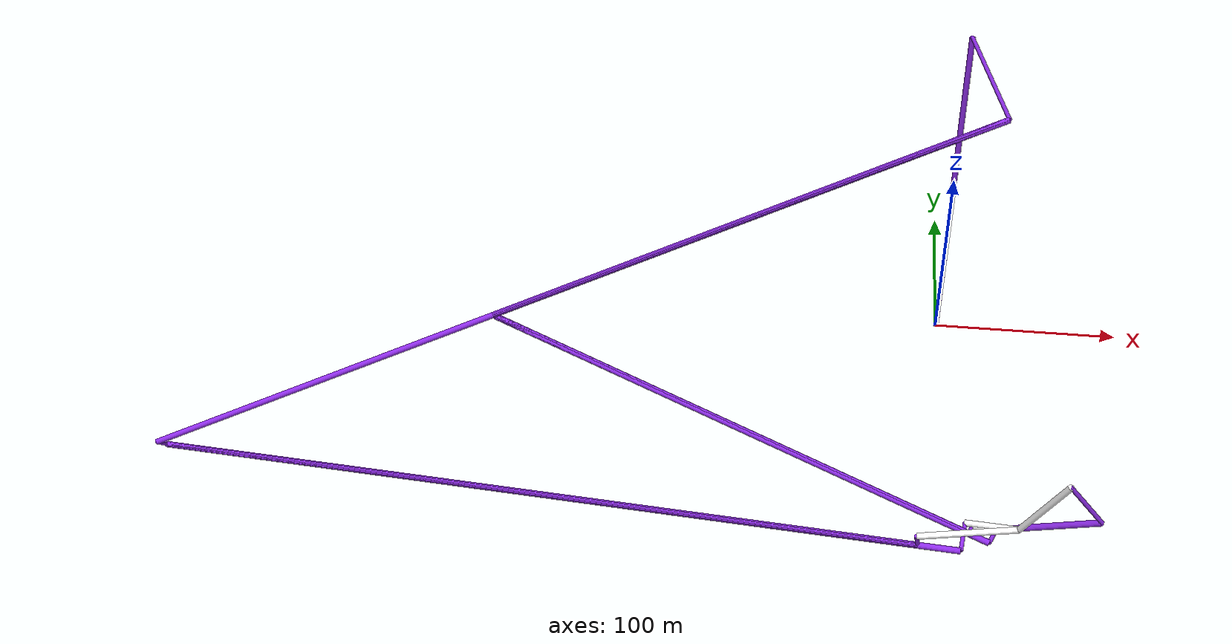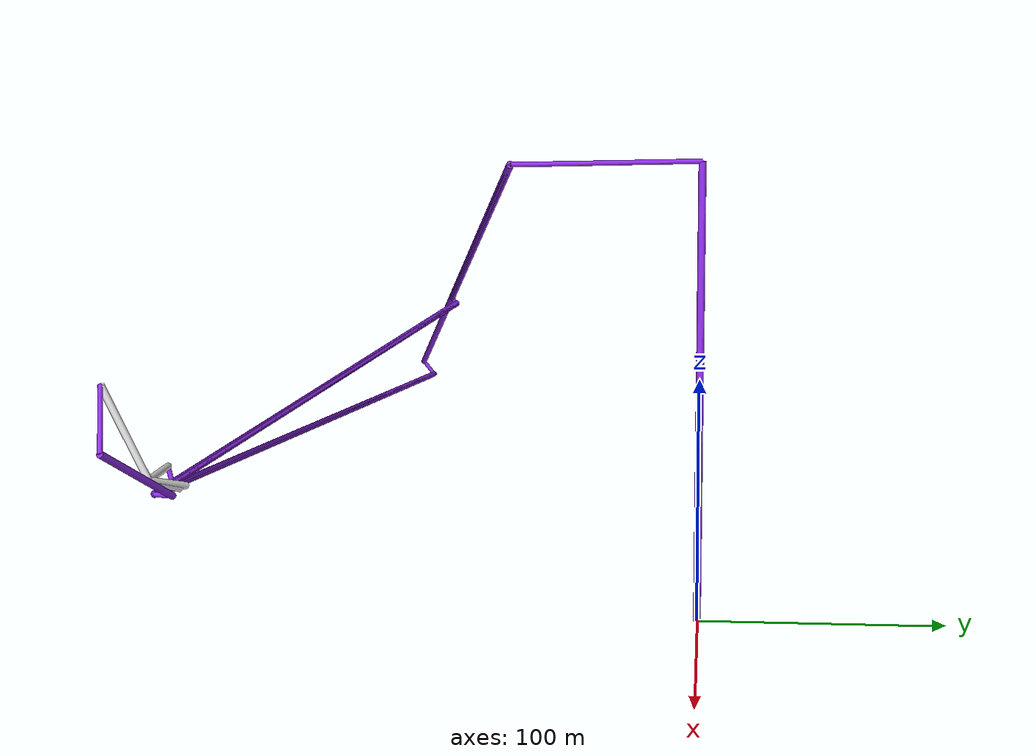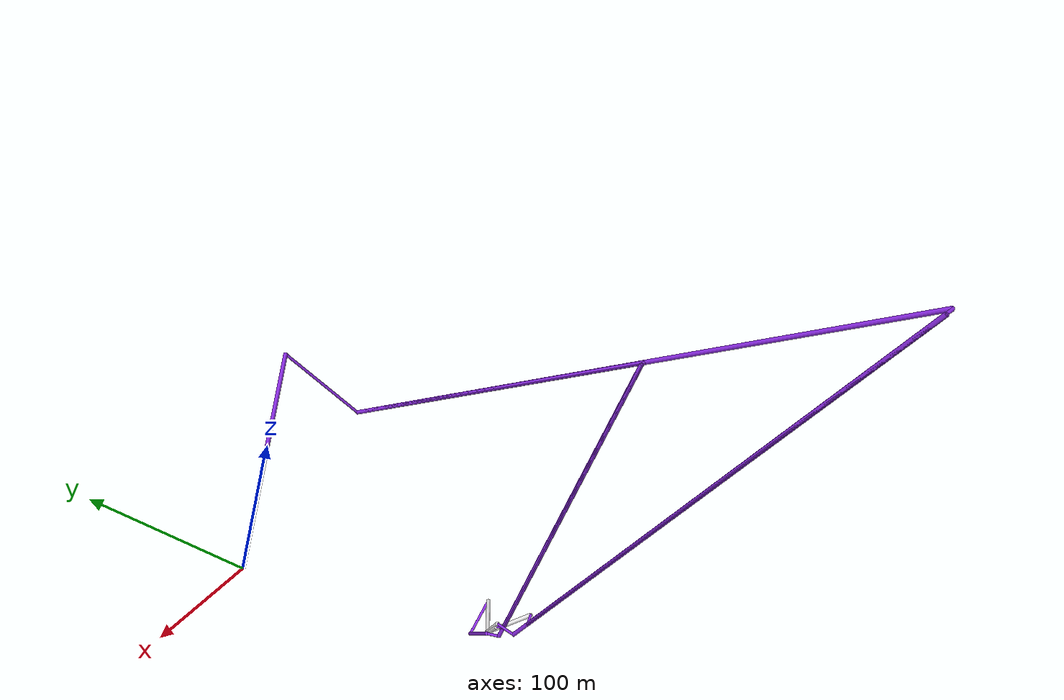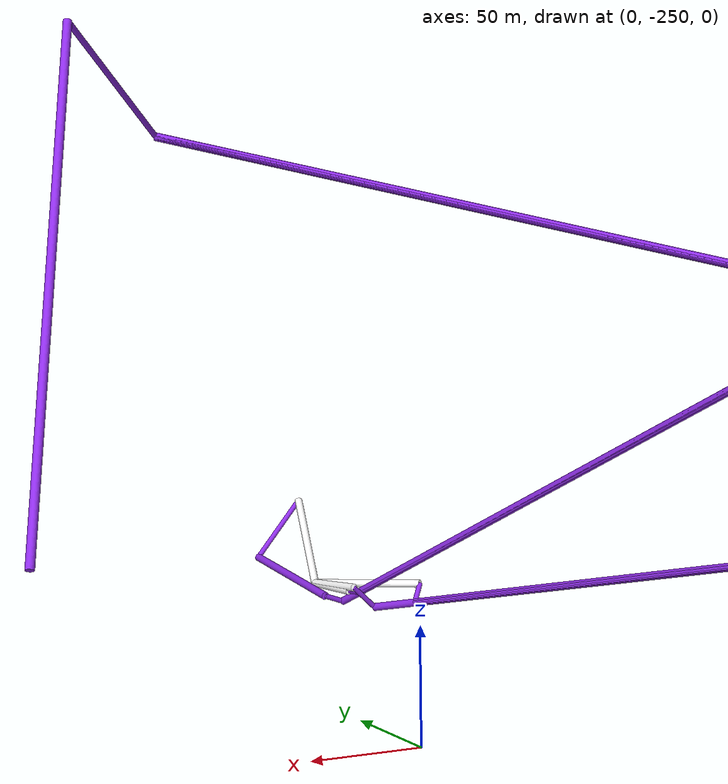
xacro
<?xml version="1.0" ?>
<robot name="atks" xmlns:xacro="http://ros.org/wiki/xacro">
 <link name="base"/>
  <joint name="base_edge0_linkP" type="fixed">
    <parent link="base"/>
    <child link="edge0_linkP"/>
    <origin xyz="0.000000 0.000000 0.000000" rpy="0.000000 0.000000 0.000000"/>
  </joint>
  <link name="edge0_linkP">
      <visual>
       <geometry>
         <cylinder length="0.000000" radius="0.000000"/>
       </geometry>
        <origin xyz="0.000000 0.000000 0.000000" rpy="0.000000 0.000000 0.000000"/>
       <material name="Material_1">
         <color rgba="0.000000 0.000000 0.000000 1.000000"/>
       </material>
     </visual>
   </link>
  <joint name="edge0_linkP_edge0_link0Z_1" type="fixed">
    <parent link="edge0_linkP"/>
    <child link="edge0_link0Z_1"/>
    <origin xyz="0.000000 0.000000 0.000000" rpy="0.000000 0.000000 0.000000"/>
  </joint>
  <link name="edge0_link0Z_1">
      <visual>
       <geometry>
         <cylinder length="187.382458" radius="1.500000"/>
       </geometry>
        <origin xyz="0.000000 0.000000 93.691229" rpy="0.000000 0.000000 0.000000"/>
       <material name="Material_2">
         <color rgba="0.541176 0.168627 0.886275 1.000000"/>
       </material>
     </visual>
   </link>
  <joint name="edge0_link0Z_1_edge0_link0X_1" type="fixed">
    <parent link="edge0_link0Z_1"/>
    <child link="edge0_link0X_1"/>
    <origin xyz="0.000000 0.000000 187.382458" rpy="0.000000 0.000000 -1.363798"/>
  </joint>
  <link name="edge0_link0X_1">
      <visual>
       <geometry>
         <cylinder length="75.413387" radius="1.000000"/>
       </geometry>
        <origin xyz="37.706693 0.000000 0.000000" rpy="0.000000 1.570796 0.000000"/>
       <material name="Material_3">
         <color rgba="0.541176 0.168627 0.886275 1.000000"/>
       </material>
     </visual>
   </link>
  <joint name="edge0_link0X_1_edge1_linkP" type="revolute">
   <parent link="edge0_link0X_1"/>
    <child link="edge1_linkP"/>
    <origin xyz="75.413387 0.000000 0.000000" rpy="-1.190504 0.000000 0.000000"/>
   <limit effort="1000.0" lower="-3.14" upper="3.14" velocity="0.5"/>
  <axis xyz="0.000000 0.000000 1.000000"/>
   </joint>
  <link name="edge1_linkP">
      <visual>
       <geometry>
         <cylinder length="0.000000" radius="0.000000"/>
       </geometry>
        <origin xyz="0.000000 0.000000 0.000000" rpy="0.000000 0.000000 0.000000"/>
       <material name="Material_4">
         <color rgba="0.541176 0.168627 0.886275 1.000000"/>
       </material>
     </visual>
   </link>
  <joint name="edge1_linkP_edge1_link0Z_2" type="fixed">
    <parent link="edge1_linkP"/>
    <child link="edge1_link0Z_2"/>
    <origin xyz="0.000000 0.000000 0.000000" rpy="0.000000 0.000000 0.000000"/>
  </joint>
  <joint name="edge1_linkP_edge1_link0Z_3" type="fixed">
    <parent link="edge1_linkP"/>
    <child link="edge1_link0Z_3"/>
    <origin xyz="0.000000 0.000000 0.000000" rpy="0.000000 0.000000 0.000000"/>
  </joint>
  <link name="edge1_link0Z_2">
      <visual>
       <geometry>
         <cylinder length="455.135432" radius="1.500000"/>
       </geometry>
        <origin xyz="0.000000 0.000000 -227.567716" rpy="0.000000 0.000000 0.000000"/>
       <material name="Material_5">
         <color rgba="0.541176 0.168627 0.886275 1.000000"/>
       </material>
     </visual>
   </link>
  <joint name="edge1_link0Z_2_edge1_link0X_2" type="fixed">
    <parent link="edge1_link0Z_2"/>
    <child link="edge1_link0X_2"/>
    <origin xyz="0.000000 0.000000 -455.135432" rpy="0.000000 0.000000 2.191051"/>
  </joint>
  <link name="edge1_link0X_2">
      <visual>
       <geometry>
         <cylinder length="9.465470" radius="1.000000"/>
       </geometry>
        <origin xyz="4.732735 0.000000 0.000000" rpy="0.000000 1.570796 0.000000"/>
       <material name="Material_6">
         <color rgba="0.541176 0.168627 0.886275 1.000000"/>
       </material>
     </visual>
   </link>
  <joint name="edge1_link0X_2_edge2_linkP" type="revolute">
   <parent link="edge1_link0X_2"/>
    <child link="edge2_linkP"/>
    <origin xyz="9.465470 0.000000 0.000000" rpy="-2.685371 0.000000 0.000000"/>
   <limit effort="1000.0" lower="-3.14" upper="3.14" velocity="0.5"/>
  <axis xyz="0.000000 0.000000 1.000000"/>
   </joint>
  <link name="edge2_linkP">
      <visual>
       <geometry>
         <cylinder length="0.000000" radius="0.000000"/>
       </geometry>
        <origin xyz="0.000000 0.000000 0.000000" rpy="0.000000 0.000000 0.000000"/>
       <material name="Material_7">
         <color rgba="0.541176 0.168627 0.886275 1.000000"/>
       </material>
     </visual>
   </link>
  <joint name="edge2_linkP_edge2_link0Z_4" type="fixed">
    <parent link="edge2_linkP"/>
    <child link="edge2_link0Z_4"/>
    <origin xyz="0.000000 0.000000 0.000000" rpy="0.000000 0.000000 0.000000"/>
  </joint>
  <joint name="edge2_linkP_edge2_link0Z_5" type="fixed">
    <parent link="edge2_linkP"/>
    <child link="edge2_link0Z_5"/>
    <origin xyz="0.000000 0.000000 0.000000" rpy="0.000000 0.000000 0.000000"/>
  </joint>
  <link name="edge2_link0Z_4">
      <visual>
       <geometry>
         <cylinder length="388.862768" radius="1.500000"/>
       </geometry>
        <origin xyz="0.000000 0.000000 -194.431384" rpy="0.000000 0.000000 0.000000"/>
       <material name="Material_8">
         <color rgba="0.541176 0.168627 0.886275 1.000000"/>
       </material>
     </visual>
   </link>
  <joint name="edge2_link0Z_4_edge2_link0X_4" type="fixed">
    <parent link="edge2_link0Z_4"/>
    <child link="edge2_link0X_4"/>
    <origin xyz="0.000000 0.000000 -388.862768" rpy="0.000000 0.000000 -2.704720"/>
  </joint>
  <link name="edge2_link0X_4">
      <visual>
       <geometry>
         <cylinder length="8.418095" radius="1.000000"/>
       </geometry>
        <origin xyz="4.209048 0.000000 0.000000" rpy="0.000000 1.570796 0.000000"/>
       <material name="Material_9">
         <color rgba="0.541176 0.168627 0.886275 1.000000"/>
       </material>
     </visual>
   </link>
  <joint name="edge2_link0X_4_edge4_link0Z" type="revolute">
   <parent link="edge2_link0X_4"/>
    <child link="edge4_link0Z"/>
    <origin xyz="8.418095 0.000000 0.000000" rpy="-2.917646 0.000000 0.000000"/>
   <limit effort="1000.0" lower="-3.14" upper="3.14" velocity="0.5"/>
  <axis xyz="0.000000 0.000000 1.000000"/>
   </joint>
  <link name="edge4_link0Z">
      <visual>
       <geometry>
         <cylinder length="45.558799" radius="1.500000"/>
       </geometry>
        <origin xyz="-0.357320 -0.144080 22.776141" rpy="-0.016914 -0.000000 1.954079"/>
       <material name="Material_10">
         <color rgba="1.000000 1.000000 1.000000 1.000000"/>
       </material>
     </visual>
   </link>
  <link name="edge2_link0Z_5">
      <visual>
       <geometry>
         <cylinder length="408.452413" radius="1.500000"/>
       </geometry>
        <origin xyz="0.000000 0.000000 -204.226207" rpy="0.000000 0.000000 0.000000"/>
       <material name="Material_11">
         <color rgba="0.541176 0.168627 0.886275 1.000000"/>
       </material>
     </visual>
   </link>
  <joint name="edge2_link0Z_5_edge2_link0X_5" type="fixed">
    <parent link="edge2_link0Z_5"/>
    <child link="edge2_link0X_5"/>
    <origin xyz="0.000000 0.000000 -408.452413" rpy="0.000000 0.000000 -1.171920"/>
  </joint>
  <link name="edge2_link0X_5">
      <visual>
       <geometry>
         <cylinder length="14.319392" radius="1.000000"/>
       </geometry>
        <origin xyz="7.159696 0.000000 0.000000" rpy="0.000000 1.570796 0.000000"/>
       <material name="Material_12">
         <color rgba="0.541176 0.168627 0.886275 1.000000"/>
       </material>
     </visual>
   </link>
  <joint name="edge2_link0X_5_edge5_link0Z" type="revolute">
   <parent link="edge2_link0X_5"/>
    <child link="edge5_link0Z"/>
    <origin xyz="14.319392 0.000000 0.000000" rpy="-0.525040 0.000000 0.000000"/>
   <limit effort="1000.0" lower="-3.14" upper="3.14" velocity="0.5"/>
  <axis xyz="0.000000 0.000000 1.000000"/>
   </joint>
  <link name="edge5_link0Z">
      <visual>
       <geometry>
         <cylinder length="26.070581" radius="1.500000"/>
       </geometry>
        <origin xyz="-1.818539 3.046107 -12.543243" rpy="-2.865958 -0.000000 0.538214"/>
       <material name="Material_13">
         <color rgba="1.000000 1.000000 1.000000 1.000000"/>
       </material>
     </visual>
   </link>
  <link name="edge1_link0Z_3">
      <visual>
       <geometry>
         <cylinder length="265.723786" radius="1.500000"/>
       </geometry>
        <origin xyz="0.000000 0.000000 -132.861893" rpy="0.000000 0.000000 0.000000"/>
       <material name="Material_14">
         <color rgba="0.541176 0.168627 0.886275 1.000000"/>
       </material>
     </visual>
   </link>
  <joint name="edge1_link0Z_3_edge1_link0X_3" type="fixed">
    <parent link="edge1_link0Z_3"/>
    <child link="edge1_link0X_3"/>
    <origin xyz="0.000000 0.000000 -265.723786" rpy="0.000000 0.000000 2.232001"/>
  </joint>
  <link name="edge1_link0X_3">
      <visual>
       <geometry>
         <cylinder length="3.651029" radius="1.000000"/>
       </geometry>
        <origin xyz="1.825514 0.000000 0.000000" rpy="0.000000 1.570796 0.000000"/>
       <material name="Material_15">
         <color rgba="0.541176 0.168627 0.886275 1.000000"/>
       </material>
     </visual>
   </link>
  <joint name="edge1_link0X_3_edge3_linkP" type="revolute">
   <parent link="edge1_link0X_3"/>
    <child link="edge3_linkP"/>
    <origin xyz="3.651029 0.000000 0.000000" rpy="-2.382186 0.000000 0.000000"/>
   <limit effort="1000.0" lower="-3.14" upper="3.14" velocity="0.5"/>
  <axis xyz="0.000000 0.000000 1.000000"/>
   </joint>
  <link name="edge3_linkP">
      <visual>
       <geometry>
         <cylinder length="0.000000" radius="0.000000"/>
       </geometry>
        <origin xyz="0.000000 0.000000 0.000000" rpy="0.000000 0.000000 0.000000"/>
       <material name="Material_16">
         <color rgba="0.541176 0.168627 0.886275 1.000000"/>
       </material>
     </visual>
   </link>
  <joint name="edge3_linkP_edge3_link0Z_6" type="fixed">
    <parent link="edge3_linkP"/>
    <child link="edge3_link0Z_6"/>
    <origin xyz="0.000000 0.000000 0.000000" rpy="0.000000 0.000000 0.000000"/>
  </joint>
  <joint name="edge3_linkP_edge3_link0Z_7" type="fixed">
    <parent link="edge3_linkP"/>
    <child link="edge3_link0Z_7"/>
    <origin xyz="0.000000 0.000000 0.000000" rpy="0.000000 0.000000 0.000000"/>
  </joint>
  <link name="edge3_link0Z_6">
      <visual>
       <geometry>
         <cylinder length="252.531091" radius="1.500000"/>
       </geometry>
        <origin xyz="0.000000 0.000000 -126.265545" rpy="0.000000 0.000000 0.000000"/>
       <material name="Material_17">
         <color rgba="0.541176 0.168627 0.886275 1.000000"/>
       </material>
     </visual>
   </link>
  <joint name="edge3_link0Z_6_edge3_link0X_6" type="fixed">
    <parent link="edge3_link0Z_6"/>
    <child link="edge3_link0X_6"/>
    <origin xyz="0.000000 0.000000 -252.531091" rpy="0.000000 0.000000 -0.719531"/>
  </joint>
  <link name="edge3_link0X_6">
      <visual>
       <geometry>
         <cylinder length="5.423200" radius="1.000000"/>
       </geometry>
        <origin xyz="2.711600 0.000000 0.000000" rpy="0.000000 1.570796 0.000000"/>
       <material name="Material_18">
         <color rgba="0.541176 0.168627 0.886275 1.000000"/>
       </material>
     </visual>
   </link>
  <joint name="edge3_link0X_6_edge6_link0Z" type="revolute">
   <parent link="edge3_link0X_6"/>
    <child link="edge6_link0Z"/>
    <origin xyz="5.423200 0.000000 0.000000" rpy="-0.510186 0.000000 0.000000"/>
   <limit effort="1000.0" lower="-3.14" upper="3.14" velocity="0.5"/>
  <axis xyz="0.000000 0.000000 1.000000"/>
   </joint>
  <link name="edge6_link0Z">
      <visual>
       <geometry>
         <cylinder length="22.711704" radius="1.500000"/>
       </geometry>
        <origin xyz="-0.656083 0.074462 -11.336639" rpy="-3.083414 -0.000000 1.457785"/>
       <material name="Material_19">
         <color rgba="1.000000 1.000000 1.000000 1.000000"/>
       </material>
     </visual>
   </link>
  <link name="edge3_link0Z_7">
      <visual>
       <geometry>
         <cylinder length="262.576911" radius="1.500000"/>
       </geometry>
        <origin xyz="0.000000 0.000000 -131.288455" rpy="0.000000 0.000000 0.000000"/>
       <material name="Material_20">
         <color rgba="0.541176 0.168627 0.886275 1.000000"/>
       </material>
     </visual>
   </link>
  <joint name="edge3_link0Z_7_edge3_link0X_7" type="fixed">
    <parent link="edge3_link0Z_7"/>
    <child link="edge3_link0X_7"/>
    <origin xyz="0.000000 0.000000 -262.576911" rpy="0.000000 0.000000 -0.864635"/>
  </joint>
  <link name="edge3_link0X_7">
      <visual>
       <geometry>
         <cylinder length="8.980921" radius="1.000000"/>
       </geometry>
        <origin xyz="4.490461 0.000000 0.000000" rpy="0.000000 1.570796 0.000000"/>
       <material name="Material_21">
         <color rgba="0.541176 0.168627 0.886275 1.000000"/>
       </material>
     </visual>
   </link>
  <joint name="edge3_link0X_7_edge7_link0Z" type="revolute">
   <parent link="edge3_link0X_7"/>
    <child link="edge7_link0Z"/>
    <origin xyz="8.980921 0.000000 0.000000" rpy="2.466143 0.000000 0.000000"/>
   <limit effort="1000.0" lower="-3.14" upper="3.14" velocity="0.5"/>
  <axis xyz="0.000000 0.000000 1.000000"/>
   </joint>
  <link name="edge7_link0Z">
      <visual>
       <geometry>
         <cylinder length="53.047805" radius="1.500000"/>
       </geometry>
        <origin xyz="0.000000 0.000000 26.523902" rpy="0.000000 0.000000 0.000000"/>
       <material name="Material_22">
         <color rgba="0.541176 0.168627 0.886275 1.000000"/>
       </material>
     </visual>
   </link>
  <joint name="edge7_link0Z_edge7_link0X" type="fixed">
    <parent link="edge7_link0Z"/>
    <child link="edge7_link0X"/>
    <origin xyz="0.000000 0.000000 53.047805" rpy="0.000000 0.000000 1.868587"/>
  </joint>
  <link name="edge7_link0X">
      <visual>
       <geometry>
         <cylinder length="28.656914" radius="1.000000"/>
       </geometry>
        <origin xyz="14.328457 0.000000 0.000000" rpy="0.000000 1.570796 0.000000"/>
       <material name="Material_23">
         <color rgba="0.541176 0.168627 0.886275 1.000000"/>
       </material>
     </visual>
   </link>
  <joint name="edge7_link0X_edge7_link1Z" type="revolute">
   <parent link="edge7_link0X"/>
    <child link="edge7_link1Z"/>
    <origin xyz="28.656914 0.000000 0.000000" rpy="1.610126 0.000000 0.000000"/>
   <limit effort="1000.0" lower="-3.14" upper="3.14" velocity="0.5"/>
  <axis xyz="0.000000 0.000000 1.000000"/>
   </joint>
  <link name="edge7_link1Z">
      <visual>
       <geometry>
         <cylinder length="46.889989" radius="1.500000"/>
       </geometry>
        <origin xyz="-12.955256 -19.532620 -0.553073" rpy="-1.594389 -0.000000 2.555950"/>
       <material name="Material_24">
         <color rgba="1.000000 1.000000 1.000000 1.000000"/>
       </material>
     </visual>
   </link>
</robot>
